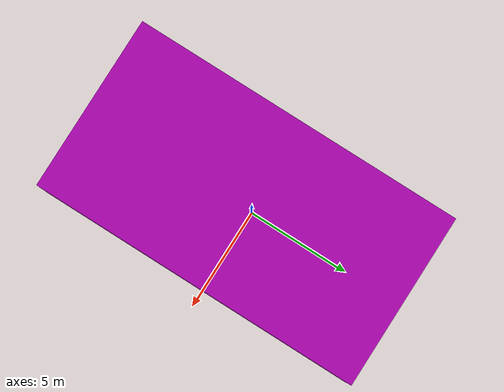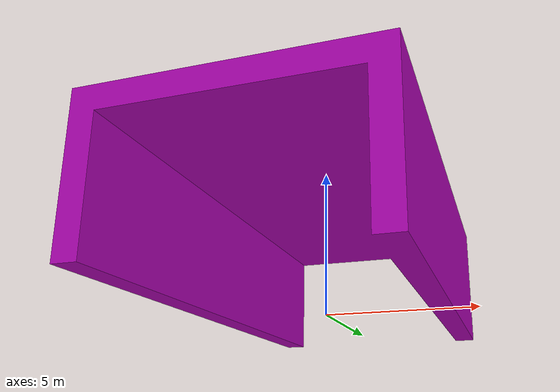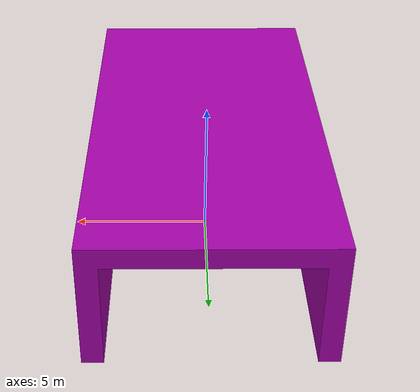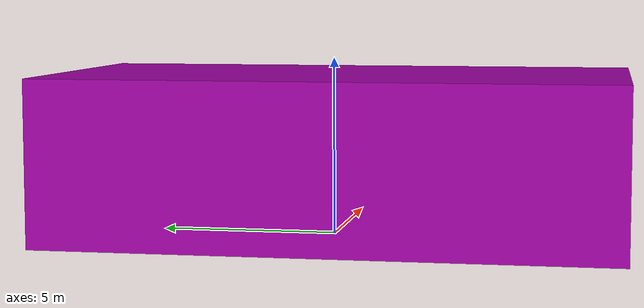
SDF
<?xml version="1.0"?>
<sdf version="1.7">
  <model name="tunnel">
    <static>true</static>
    <link name="link">
      <pose>0 0 0 0 0 0</pose>

      <collision name="collision">
        <geometry>
          <mesh>
            <uri>model://tunnel/meshes/model.dae</uri>
            <scale>1 1 1</scale>
          </mesh>
        </geometry>
      </collision>

      <visual name="visual">
        <geometry>
          <mesh>
            <uri>model://tunnel/meshes/model.dae</uri>
            <scale>1 1 1</scale>
          </mesh>
        </geometry>
      </visual>

    </link>
  </model>
</sdf>
